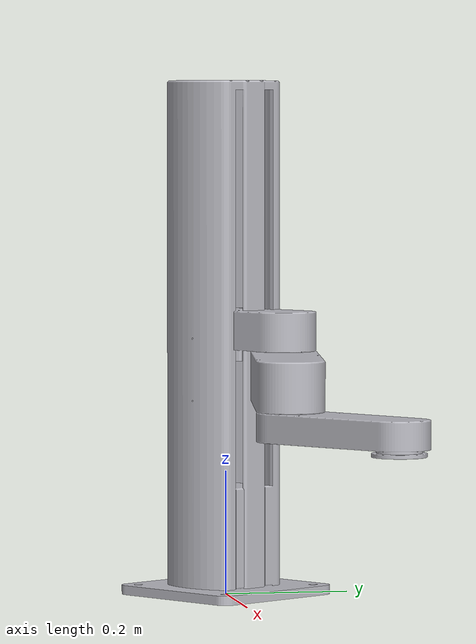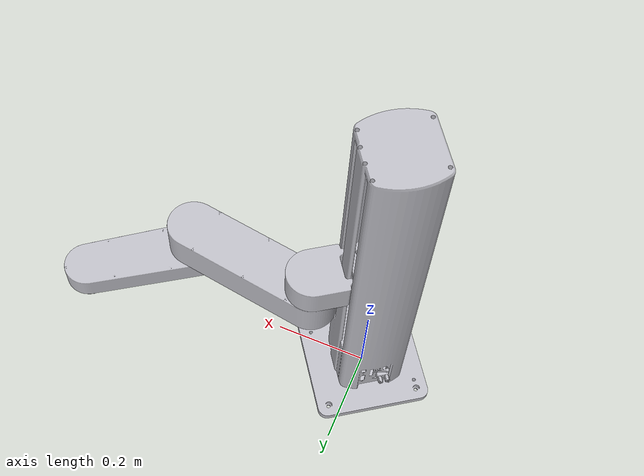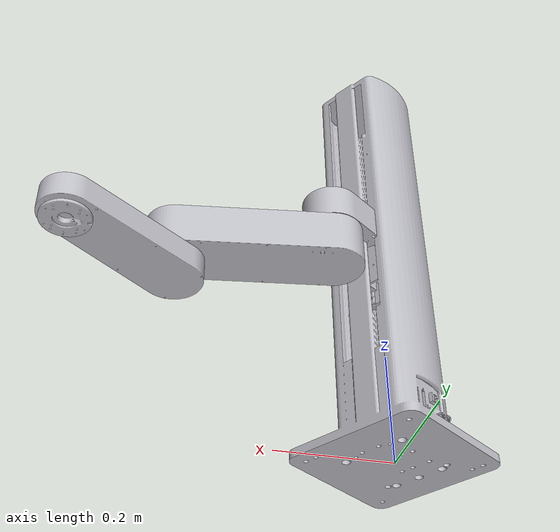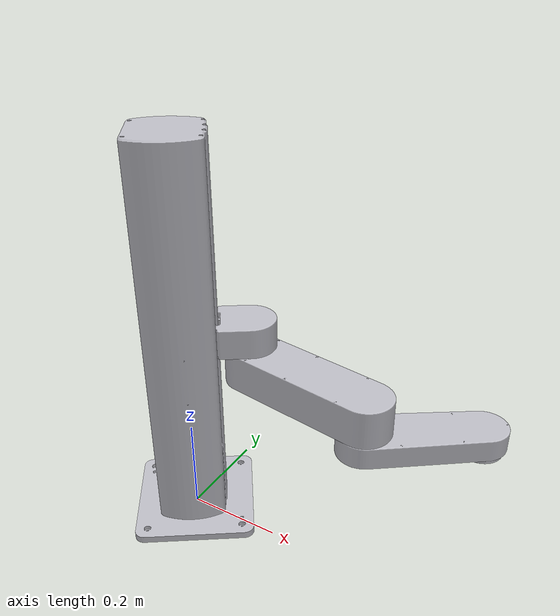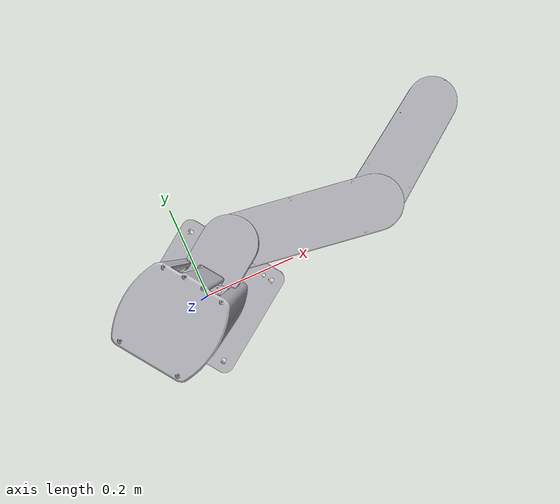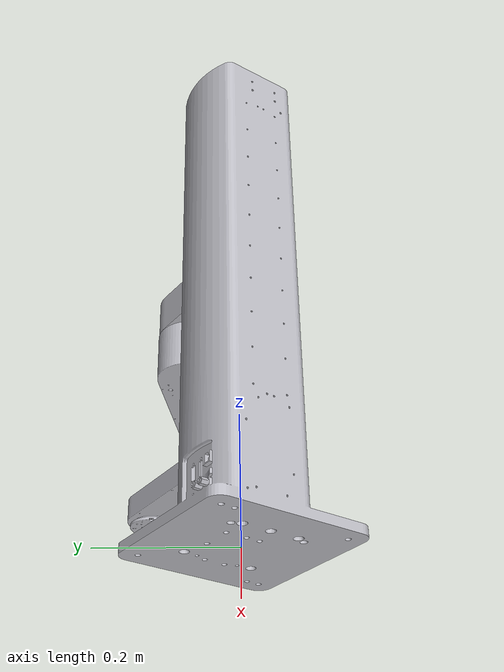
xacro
<?xml version="1.0" ?>
<robot name="robot32" xmlns:xacro="http://www.ros.org/wiki/xacro">

<link name="base_link">
  <inertial>
    <origin xyz="-0.014465423320095172 -0.011835969483502575 0.33861911769152025" rpy="0 0 0"/>
    <mass value="34.438626146403976"/>
    <inertia ixx="2.571226" iyy="2.571398" izz="0.223156" ixy="0.001878" iyz="0.032207" ixz="0.04669"/>
  </inertial>
  <visual>
    <origin xyz="0 0 0" rpy="0 0 0"/>
    <geometry>
      <mesh filename="package://robot32_description/meshes/base_link.stl" scale="0.001 0.001 0.001"/>
    </geometry>
    <material name="silver"/>
  </visual>
  <collision>
    <origin xyz="0 0 0" rpy="0 0 0"/>
    <geometry>
      <mesh filename="package://robot32_description/meshes/base_link.stl" scale="0.001 0.001 0.001"/>
    </geometry>
  </collision>
</link>

<link name="shoulder_link_1">
  <inertial>
    <origin xyz="0.13133764717788565 0.09177246137939866 -0.4093979685027963" rpy="0 0 0"/>
    <mass value="8.626417815320053"/>
    <inertia ixx="0.023454" iyy="0.033252" izz="0.045968" ixy="-0.013875" iyz="-0.001158" ixz="-0.001499"/>
  </inertial>
  <visual>
    <origin xyz="0.058979 0.041298 -0.83" rpy="0 0 0"/>
    <geometry>
      <mesh filename="package://robot32_description/meshes/shoulder_link_1.stl" scale="0.001 0.001 0.001"/>
    </geometry>
    <material name="silver"/>
  </visual>
  <collision>
    <origin xyz="0.058979 0.041298 -0.83" rpy="0 0 0"/>
    <geometry>
      <mesh filename="package://robot32_description/meshes/shoulder_link_1.stl" scale="0.001 0.001 0.001"/>
    </geometry>
  </collision>
</link>

<link name="elbow_link_1">
  <inertial>
    <origin xyz="0.14489768094391825 -0.01990323140936625 -0.010112140605986752" rpy="0 0 0"/>
    <mass value="22.357030788873505"/>
    <inertia ixx="0.035426" iyy="0.238613" izz="0.251981" ixy="0.030284" iyz="0.000649" ixz="-0.004412"/>
  </inertial>
  <visual>
    <origin xyz="-0.105556 -0.074155 -0.368226" rpy="0 0 0"/>
    <geometry>
      <mesh filename="package://robot32_description/meshes/elbow_link_1.stl" scale="0.001 0.001 0.001"/>
    </geometry>
    <material name="silver"/>
  </visual>
  <collision>
    <origin xyz="-0.105556 -0.074155 -0.368226" rpy="0 0 0"/>
    <geometry>
      <mesh filename="package://robot32_description/meshes/elbow_link_1.stl" scale="0.001 0.001 0.001"/>
    </geometry>
  </collision>
</link>

<link name="wrist_link_1">
  <inertial>
    <origin xyz="0.09128606520399923 0.06485282195981397 -0.024831970970250528" rpy="0 0 0"/>
    <mass value="10.544145312153212"/>
    <inertia ixx="0.034703" iyy="0.058357" izz="0.089602" ixy="-0.034425" iyz="-0.000295" ixz="-0.000418"/>
  </inertial>
  <visual>
    <origin xyz="-0.377673 -0.03444 -0.321726" rpy="0 0 0"/>
    <geometry>
      <mesh filename="package://robot32_description/meshes/wrist_link_1.stl" scale="0.001 0.001 0.001"/>
    </geometry>
    <material name="silver"/>
  </visual>
  <collision>
    <origin xyz="-0.377673 -0.03444 -0.321726" rpy="0 0 0"/>
    <geometry>
      <mesh filename="package://robot32_description/meshes/wrist_link_1.stl" scale="0.001 0.001 0.001"/>
    </geometry>
  </collision>
</link>

<link name="end_link_1">
  <inertial>
    <origin xyz="0.002100189659331675 0.0009940682583014226 -0.004675279556193734" rpy="0 0 0"/>
    <mass value="0.34955592300531374"/>
    <inertia ixx="0.000146" iyy="0.000144" izz="0.000257" ixy="0.0" iyz="0.0" ixz="1e-06"/>
  </inertial>
  <visual>
    <origin xyz="-0.560829 -0.165127 -0.276226" rpy="0 0 0"/>
    <geometry>
      <mesh filename="package://robot32_description/meshes/end_link_1.stl" scale="0.001 0.001 0.001"/>
    </geometry>
    <material name="silver"/>
  </visual>
  <collision>
    <origin xyz="-0.560829 -0.165127 -0.276226" rpy="0 0 0"/>
    <geometry>
      <mesh filename="package://robot32_description/meshes/end_link_1.stl" scale="0.001 0.001 0.001"/>
    </geometry>
  </collision>
</link>

<joint name="base_to_shoulder_joint" type="prismatic">
  <origin xyz="-0.058979 -0.041298 0.83" rpy="0 0 0"/>
  <parent link="base_link"/>
  <child link="shoulder_link_1"/>
  <axis xyz="0.0 0.0 1.0"/>
  <limit upper="0.345" lower="-0.223" effort="100" velocity="100"/>
</joint>

<joint name="shoulder_to_elbow_joint" type="revolute">
  <origin xyz="0.164535 0.115453 -0.461774" rpy="0 0 0"/>
  <parent link="shoulder_link_1"/>
  <child link="elbow_link_1"/>
  <axis xyz="0.0 0.0 -1.0"/>
  <limit upper="0.977384" lower="-2.478368" effort="100" velocity="100"/>
</joint>

<joint name="elbow_to_wrist_joint" type="revolute">
  <origin xyz="0.272117 -0.039715 -0.0465" rpy="0 0 0"/>
  <parent link="elbow_link_1"/>
  <child link="wrist_link_1"/>
  <axis xyz="0.0 0.0 -1.0"/>
  <limit upper="6.283185" lower="0.0" effort="100" velocity="100"/>
</joint>

<joint name="wrist_to_end_joint" type="revolute">
  <origin xyz="0.183156 0.130687 -0.0455" rpy="0 0 0"/>
  <parent link="wrist_link_1"/>
  <child link="end_link_1"/>
  <axis xyz="0.0 0.0 -1.0"/>
  <limit upper="6.283185" lower="0.0" effort="100" velocity="100"/>
</joint>

</robot>
